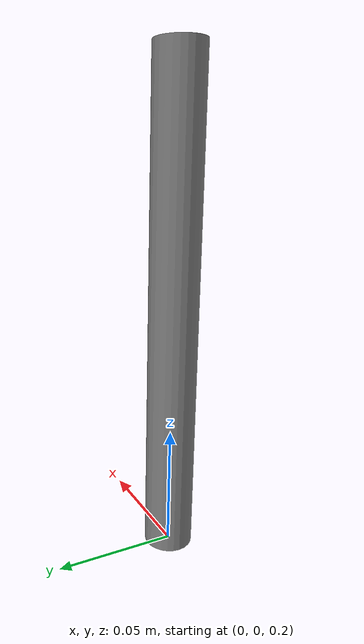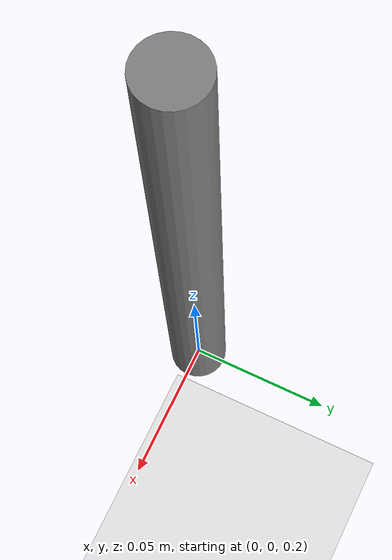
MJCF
<mujoco>
	<option gravity="0 0 -9.8" viscosity="0.1" wind="0 0 0" />
  <worldbody>
    <light diffuse=".5 .5 .5" pos="0 0 7" dir="0 0 -1"/>
    <geom type="plane" size="1 1 0.1" rgba=".9 0.9 0.9 1"/>
    <body pos="0 0 0.3" euler="0 0 0">
      <geom type="cylinder" size="0.01 0.1" pos="0 0 0" mass="1"/>
      <joint name="main_hinge" type="hinge" pos="0 0 0.1" axis="1 0 0" damping="0.1" range="-360 360" limited="true" />
    </body>
  </worldbody>
  <sensor>
    <jointvel joint="main_hinge" />
  </sensor>
  <actuator>
    <motor joint="main_hinge" ctrllimited="true" ctrlrange="-10 10"  />
  </actuator>
</mujoco>
